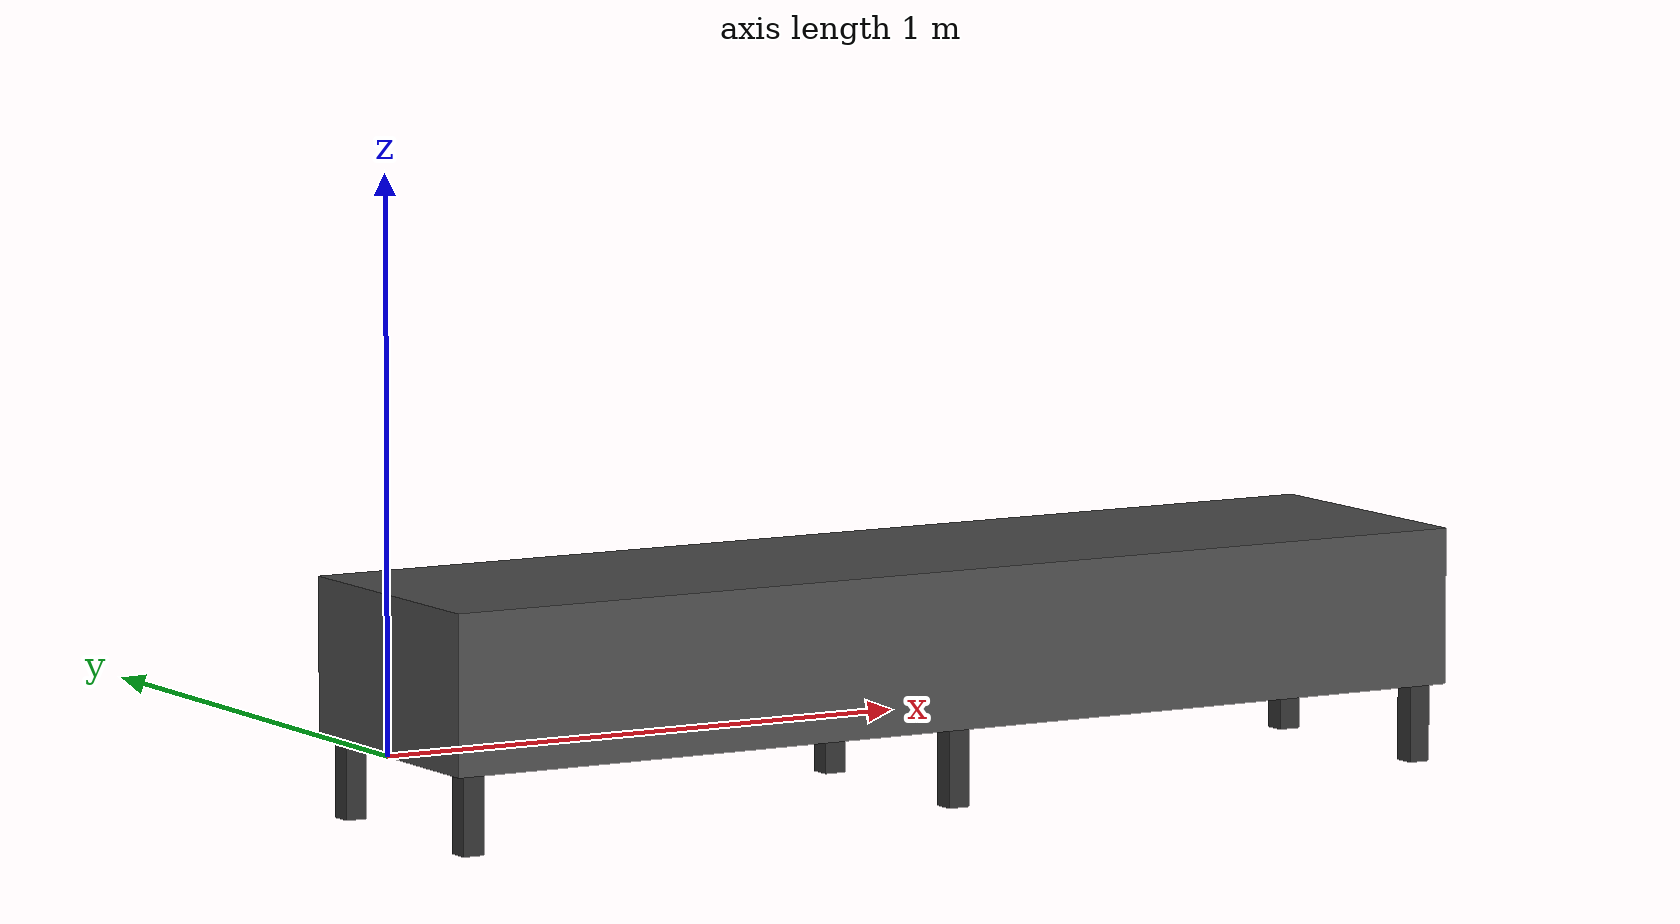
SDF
<?xml version="1.0" ?>
<sdf version="1.8">
<model name="conveyor_frame_2m">
    <static>true</static>
    <pose>1.0 0 0.14 0 0 0</pose>
    <link name="link">
      <inertial><mass>200000</mass>
        <inertia><ixx>2e6</ixx><ixy>0</ixy><ixz>0</ixz>
                 <iyy>2e6</iyy><iyz>0</iyz><izz>2e6</izz></inertia>
      </inertial>

      <!-- Main body (2.0m long) -->
      <collision name="frame_col">
        <geometry><box><size>2.0 0.5 0.28</size></box></geometry>
      </collision>
      <visual name="frame_vis">
        <geometry><box><size>2.0 0.5 0.28</size></box></geometry>
        <material>
          <ambient>0.28 0.28 0.28 1</ambient>
          <diffuse>0.30 0.30 0.30 1</diffuse>
          <specular>0.5 0.5 0.5 1</specular>
        </material>
      </visual>

      <!-- 6 legs (for 2m conveyor) -->
      <visual name="leg_fl"><pose>-0.96  0.21 -0.14 0 0 0</pose>
        <geometry><box><size>0.04 0.04 0.28</size></box></geometry>
        <material><ambient>0.2 0.2 0.2 1</ambient><diffuse>0.2 0.2 0.2 1</diffuse></material></visual>
      <visual name="leg_fr"><pose>-0.96 -0.21 -0.14 0 0 0</pose>
        <geometry><box><size>0.04 0.04 0.28</size></box></geometry>
        <material><ambient>0.2 0.2 0.2 1</ambient><diffuse>0.2 0.2 0.2 1</diffuse></material></visual>

      <visual name="leg_ml"><pose> 0.0   0.21 -0.14 0 0 0</pose>
        <geometry><box><size>0.04 0.04 0.28</size></box></geometry>
        <material><ambient>0.2 0.2 0.2 1</ambient><diffuse>0.2 0.2 0.2 1</diffuse></material></visual>
      <visual name="leg_mr"><pose> 0.0  -0.21 -0.14 0 0 0</pose>
        <geometry><box><size>0.04 0.04 0.28</size></box></geometry>
        <material><ambient>0.2 0.2 0.2 1</ambient><diffuse>0.2 0.2 0.2 1</diffuse></material></visual>

      <visual name="leg_bl"><pose> 0.96  0.21 -0.14 0 0 0</pose>
        <geometry><box><size>0.04 0.04 0.28</size></box></geometry>
        <material><ambient>0.2 0.2 0.2 1</ambient><diffuse>0.2 0.2 0.2 1</diffuse></material></visual>
      <visual name="leg_br"><pose> 0.96 -0.21 -0.14 0 0 0</pose>
        <geometry><box><size>0.04 0.04 0.28</size></box></geometry>
        <material><ambient>0.2 0.2 0.2 1</ambient><diffuse>0.2 0.2 0.2 1</diffuse></material></visual>

      <!-- Cross beams -->
      <visual name="beam_front"><pose>-0.96 0 -0.10 0 0 0</pose>
        <geometry><box><size>0.04 0.46 0.04</size></box></geometry>
        <material><ambient>0.2 0.2 0.2 1</ambient><diffuse>0.2 0.2 0.2 1</diffuse></material></visual>
      <visual name="beam_mid"><pose>0 0 -0.10 0 0 0</pose>
        <geometry><box><size>0.04 0.46 0.04</size></box></geometry>
        <material><ambient>0.2 0.2 0.2 1</ambient><diffuse>0.2 0.2 0.2 1</diffuse></material></visual>
      <visual name="beam_back"><pose>0.96 0 -0.10 0 0 0</pose>
        <geometry><box><size>0.04 0.46 0.04</size></box></geometry>
        <material><ambient>0.2 0.2 0.2 1</ambient><diffuse>0.2 0.2 0.2 1</diffuse></material></visual>
    </link>
  </model>
</sdf>
